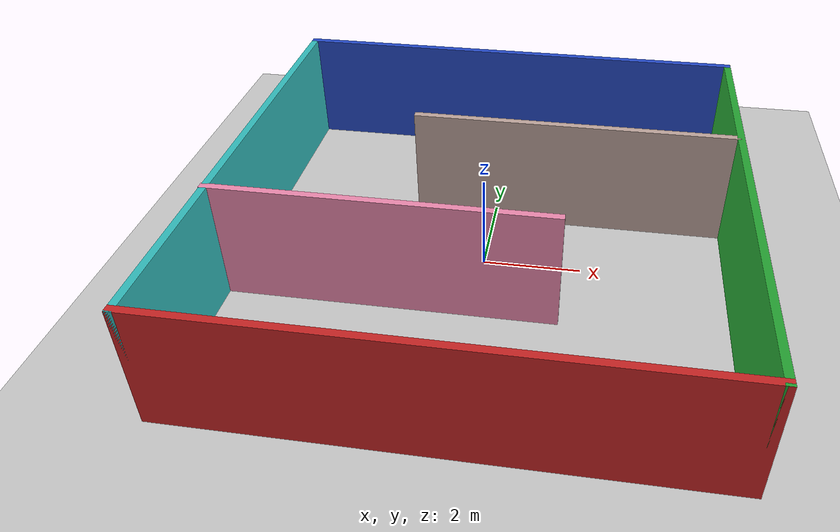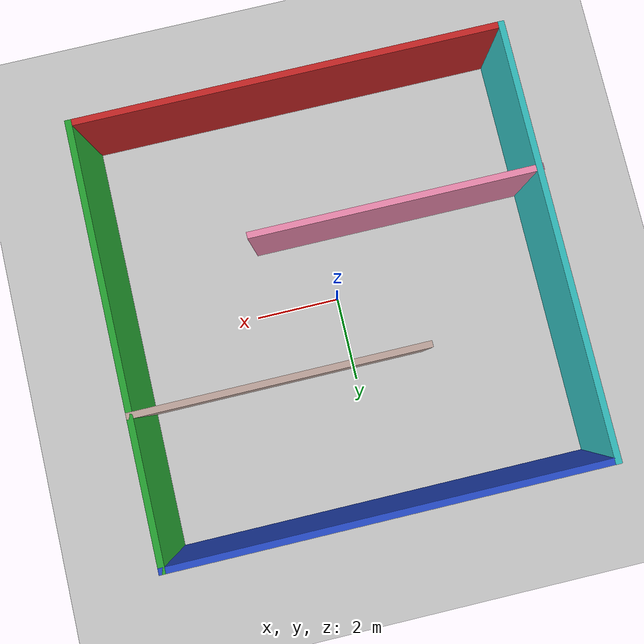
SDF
<sdf version="1.6">
 <world name="default">
  <light name="sun" type="directional">
   <pose>0 0 10 0 -0 0</pose>
   <diffuse>0.8 0.8 0.8 1</diffuse>
   <specular>0.2 0.2 0.2 1</specular>
   <attenuation>
    <range>1000</range>
    <constant>0.9</constant>
    <linear>0.01</linear>
    <quadratic>0.001</quadratic>
   </attenuation>
   <direction>-0.5 0.1 -0.9</direction>
  </light>
  <model name="ground_plane">
   <static>1</static>
   <link name="link">
    <collision name="collision">
     <geometry><plane><normal>0 0 1</normal><size>100 100</size></plane></geometry>
     <surface>
      <contact><collide_bitmask>65535</collide_bitmask></contact>
      <friction><ode><mu>100</mu><mu2>50</mu2></ode></friction>
     </surface>
    </collision>
    <visual name="visual">
     <cast_shadows>0</cast_shadows>
     <geometry><plane><normal>0 0 1</normal><size>100 100</size></plane></geometry>
     <material>
      <script><uri>file://media/materials/scripts/gazebo.material</uri><name>Gazebo/Grey</name></script>
     </material>
    </visual>
   </link>
  </model>
  <gravity>0 0 -9.8</gravity>
  <magnetic_field>6e-06 2.3e-05 -4.2e-05</magnetic_field>
  <atmosphere type="adiabatic"/>
  <physics name="default_physics" default="0" type="ode">
   <max_step_size>0.001</max_step_size>
   <real_time_factor>1</real_time_factor>
   <real_time_update_rate>1000</real_time_update_rate>
  </physics>
  <scene><ambient>0.4 0.4 0.4 1</ambient><background>0.7 0.7 0.7 1</background><shadows>1</shadows></scene>
  <spherical_coordinates>
   <surface_model>EARTH_WGS84</surface_model>
   <latitude_deg>0</latitude_deg>
   <longitude_deg>0</longitude_deg>
   <elevation>0</elevation>
   <heading_deg>0</heading_deg>
  </spherical_coordinates>
  <model name="corridor">
   <pose>-0.0095 0 0 0 -0 0</pose>
   <link name="Wall_12">
    <collision name="Wall_12_Collision">
     <geometry><box><size>10.15 0.15 2.5</size></box></geometry>
     <pose>0 0 1.25 0 -0 0</pose>
    </collision>
    <visual name="Wall_12_Visual">
     <pose>0 0 1.25 0 -0 0</pose>
     <geometry><box><size>10.15 0.15 2.5</size></box></geometry>
     <material>
      <script><uri>file://media/materials/scripts/gazebo.material</uri><name>Gazebo/Red</name></script>
      <ambient>1 0 0 1</ambient>
     </material>
     <meta><layer>0</layer></meta>
    </visual>
    <pose>0.0095 -5 0 0 -0 0</pose>
   </link>
   <link name="Wall_13">
    <collision name="Wall_13_Collision">
     <geometry><box><size>10.15 0.15 2.5</size></box></geometry>
     <pose>0 0 1.25 0 -0 0</pose>
    </collision>
    <visual name="Wall_13_Visual">
     <pose>0 0 1.25 0 -0 0</pose>
     <geometry><box><size>10.15 0.15 2.5</size></box></geometry>
     <material>
      <script><uri>file://media/materials/scripts/gazebo.material</uri><name>Gazebo/Green</name></script>
      <ambient>0 1 0 1</ambient>
     </material>
     <meta><layer>0</layer></meta>
    </visual>
    <pose>5.0095 0 0 0 -0 1.5708</pose>
   </link>
   <link name="Wall_14">
    <collision name="Wall_14_Collision">
     <geometry><box><size>10.15 0.15 2.5</size></box></geometry>
     <pose>0 0 1.25 0 -0 0</pose>
    </collision>
    <visual name="Wall_14_Visual">
     <pose>0 0 1.25 0 -0 0</pose>
     <geometry><box><size>10.15 0.15 2.5</size></box></geometry>
     <material>
      <script><uri>file://media/materials/scripts/gazebo.material</uri><name>Gazebo/Blue</name></script>
      <ambient>0 0 1 1</ambient>
     </material>
     <meta><layer>0</layer></meta>
    </visual>
    <pose>0.0095 5 0 0 -0 3.14159</pose>
   </link>
   <link name="Wall_15">
    <collision name="Wall_15_Collision">
     <geometry><box><size>10.15 0.15 2.5</size></box></geometry>
     <pose>0 0 1.25 0 -0 0</pose>
    </collision>
    <visual name="Wall_15_Visual">
     <pose>0 0 1.25 0 -0 0</pose>
     <geometry><box><size>10.15 0.15 2.5</size></box></geometry>
     <material>
      <script><uri>file://media/materials/scripts/gazebo.material</uri><name>Gazebo/Turquoise</name></script>
      <ambient>0 0.5 0.5 1</ambient>
     </material>
     <meta><layer>0</layer></meta>
    </visual>
    <pose>-4.9905 0 0 0 0 -1.5708</pose>
   </link>
   <link name="Wall_17">
    <collision name="Wall_17_Collision">
     <geometry><box><size>6.769 0.15 2.5</size></box></geometry>
     <pose>0 0 1.25 0 -0 0</pose>
    </collision>
    <visual name="Wall_17_Visual">
     <pose>0 0 1.25 0 -0 0</pose>
     <geometry><box><size>6.769 0.15 2.5</size></box></geometry>
     <material>
      <script><uri>file://media/materials/scripts/gazebo.material</uri><name>Gazebo/Pink</name></script>
      <ambient>1 0.5 0.5 1</ambient>
     </material>
     <meta><layer>0</layer></meta>
    </visual>
    <pose>-1.7 -1.6 0 0 -0 0</pose>
   </link>
   <link name="Wall_19">
    <collision name="Wall_19_Collision">
     <geometry><box><size>6.81269 0.15 2.5</size></box></geometry>
     <pose>0 0 1.25 0 -0 0</pose>
    </collision>
    <visual name="Wall_19_Visual">
     <pose>0 0 1.25 0 -0 0</pose>
     <geometry><box><size>6.81269 0.15 2.5</size></box></geometry>
     <material>
      <script><uri>file://media/materials/scripts/gazebo.material</uri><name>Gazebo/Grey</name></script>
      <ambient>0.760784 0.662745 0.627451 1</ambient>
     </material>
     <meta><layer>0</layer></meta>
    </visual>
    <pose>1.678 1.655 0 0 -0 3.14159</pose>
   </link>
   <static>1</static>
  </model>
 </world>
</sdf>
